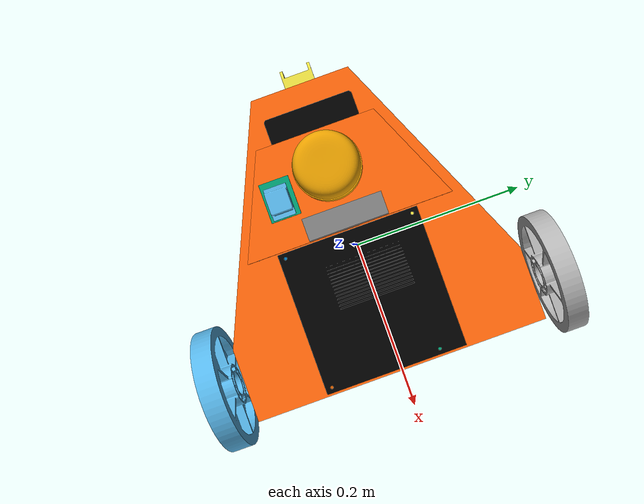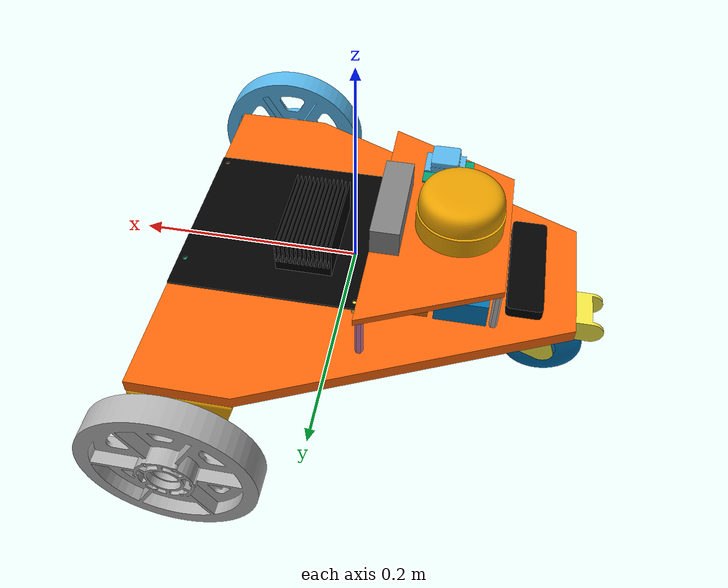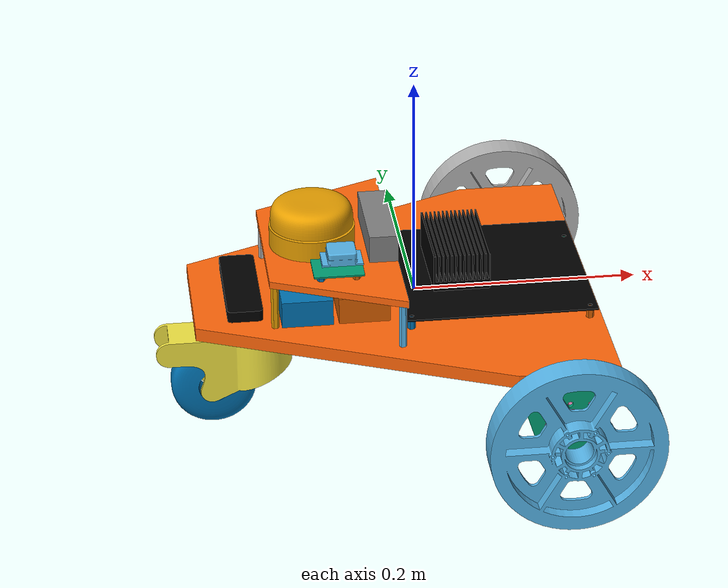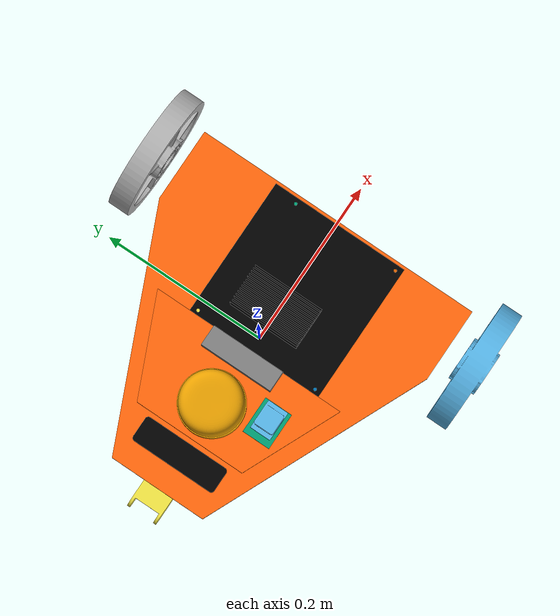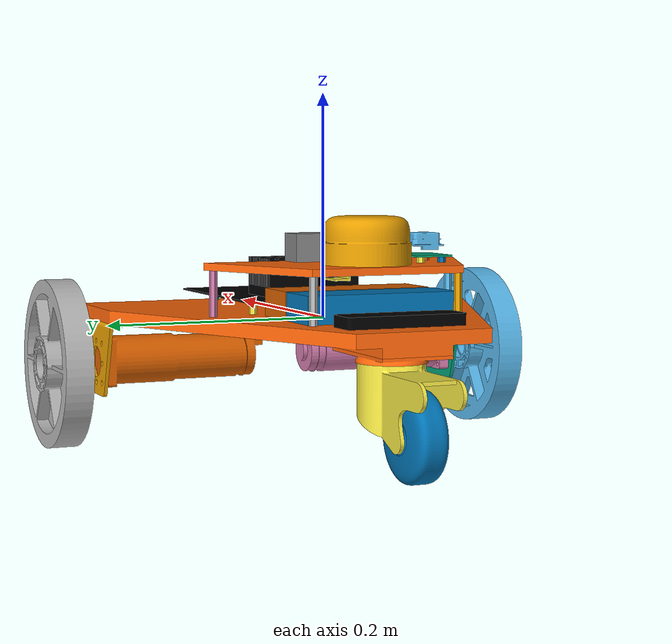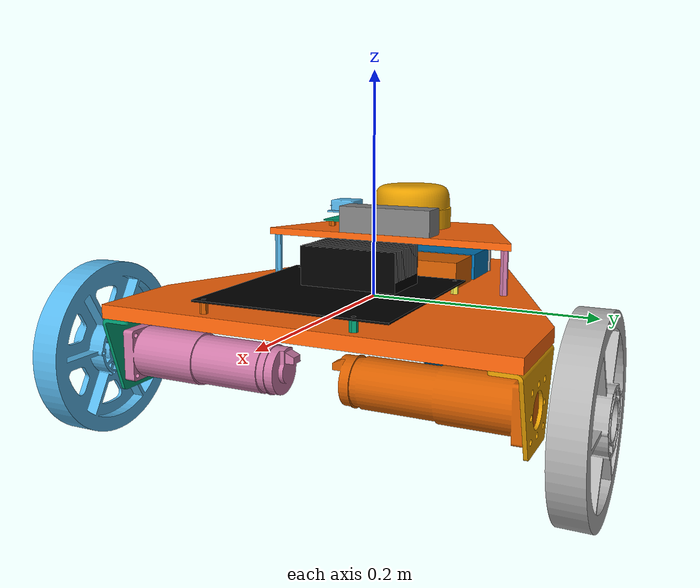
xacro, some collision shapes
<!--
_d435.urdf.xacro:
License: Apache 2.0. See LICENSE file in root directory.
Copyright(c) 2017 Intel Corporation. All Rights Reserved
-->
<?xml version="1.0"?>
<!-- Revolute-Revolute Manipulator -->
<robot name="little_rover" xmlns:xacro="http://ros.org/wiki/xacro">
<xacro:include filename="$(find little_rover)/urdf/_d435.urdf.xacro" />

  <!-- Define colors to use -->
  <material name="black">
    <color rgba="0.0 0.0 0.0 1.0"/>
  </material>
  <material name="orange">
    <color rgba="1.0 0.4 0.04 1.0"/>
  </material>

  <!-- Define ROS controller plugin -->
  <gazebo>
    <plugin name="gazebo_ros_control" filename="libgazebo_ros_control.so">
      <robotNamespace>/</robotNamespace>
    </plugin>
  </gazebo>

  <link name="base_link"/>

  <joint name="dummy_joint" type="fixed">
    <parent link="base_link"/>
    <child link="dummy"/>
    <origin xyz="0 0 0"/>
  </joint>

  <!-- Link used to define the rover body -->
  <link name="dummy">
    <visual>
        <origin xyz="0 0 0" rpy="0 0 0"/>
        <geometry>
          <mesh filename="package://little_rover/meshes/baseframe.dae"/>
        </geometry>
        <material name="orange"/>
    </visual>
    <collision>
        <origin xyz="0 0 0" rpy="0 0 0"/>
        <geometry>
          <mesh filename="package://little_rover/meshes/baseframe.dae"/>
        </geometry>
    </collision>
    <inertial>
      <origin xyz="0 0 0" rpy="0 0 0"/>
      <mass value="0.40825332"/>
      <inertia ixx="0.00290479"  ixy="0"  ixz="0.0003146" iyy="0.00401074" iyz="0" izz="0.00690116" />
    </inertial>
  </link>
  <!-- Color Properties for rover -->
  <gazebo reference="dummy">
    <material>Gazebo/Orange</material>
  </gazebo>

<!-- define the castor baseplate -->
  <joint name="castor_baseplate_joint" type="fixed">
    <parent link="dummy"/>
    <child link="castor_baseplate"/>
    <origin xyz="-0.13952 0 -0.01925" rpy="0 0 0"/>
  </joint>

  <!-- Link used to define the rover body -->
  <link name="castor_baseplate">
    <visual>
        <origin xyz="0 0 0" rpy="0 0 0"/>
        <geometry>
          <mesh filename="package://little_rover/meshes/castor_baseplate.dae"/>
        </geometry>
        <material name="orange"/>
    </visual>
    <collision>
        <origin xyz="0 0 0" rpy="0 0 0"/>
        <geometry>
          <mesh filename="package://little_rover/meshes/castor_baseplate.dae"/>
        </geometry>
    </collision>
    <inertial>
      <origin xyz="0 0 0" rpy="0 0 0"/>
      <mass value="0.23041547"/>
      <inertia ixx="0.00006154"  ixy="0"  ixz="0" iyy="0.00010617" iyz="0" izz="0.00016438" />
    </inertial>
  </link>
  <!-- Color Properties for rover -->
  <gazebo reference="castor_baseplate">
    <material>Gazebo/Orange</material>
  </gazebo>

<!-- define the castor SWIVEL -->
  <joint name="castor_swivel_joint" type="continuous">
    <parent link="dummy"/>
    <child link="castor_swivel"/>
    <origin xyz=" -0.13952 0 -0.048014399" rpy="0 0 0"/>
    <axis xyz="0 0 1"/>
  </joint>

  <!-- Link used to define the castor SWIVEL -->
  <link name="castor_swivel">
    <visual>
        <origin xyz="-0.02552697 0 0" rpy="0 0 0"/>
        <geometry>
          <mesh filename="package://little_rover/meshes/castor_swivel.dae"/>
        </geometry>
    </visual>
    <collision>
        <origin xyz="-0.02552697 0 0" rpy="0 0 0"/>
        <geometry>
          <mesh filename="package://little_rover/meshes/castor_swivel.dae"/>
        </geometry>
    </collision>
    <inertial>
        <origin xyz="-0.02552697 0 0" rpy="0 0 0"/>
      <mass value="0.32608979"/>
      <inertia ixx="0.00019346"  ixy="0"  ixz="-0.00000695" iyy="0.00041506" iyz="0" izz="0.00044385" />
    </inertial>
  </link>

<!-- define the castor WHEEL -->
  <joint name="castor_wheel_joint" type="continuous">
    <parent link="castor_swivel"/>
    <child link="castor_wheel"/>
    <origin xyz=" -0.04467807 0 -0.033561514" rpy="0 0 0"/>
    <axis xyz="0 1 0"/>
  </joint>

  <!-- Link used to define the castor WHEEL -->
  <link name="castor_wheel">
    <visual>
        <origin xyz="0 0 0" rpy="0 0 0"/>
        <geometry>
          <mesh filename="package://little_rover/meshes/castor_wheel.dae"/>
        </geometry>
    </visual>
    <collision>
        <origin xyz="0 0 0" rpy="0 0 0"/>
        <geometry>
          <mesh filename="package://little_rover/meshes/castor_wheel.dae"/>
        </geometry>
    </collision>
    <inertial>
      <origin xyz="0 0 0" rpy="0 0 0"/>
      <mass value="0.12613212"/>
      <inertia ixx="0.00005694"  ixy="0"  ixz="0" iyy="0.00009868" iyz="0" izz="0.00005694" />
    </inertial>
  </link>

<!-- define the LEFT MOTOR -->
  <joint name="left_motor_joint" type="fixed">
    <parent link="dummy"/>
    <child link="left_motor"/>
    <origin xyz=" 0.11103 0.105081768 -0.04347" rpy="0 0 3.14"/>
  </joint>

  <!-- Link used to define the castor WHEEL -->
  <link name="left_motor">
    <visual>
        <origin xyz="0 0 0" rpy="0 0 0"/>
        <geometry>
          <mesh filename="package://little_rover/meshes/motor.dae"/>
        </geometry>
    </visual>
    <collision>
        <origin xyz="0 0 0" rpy="0 0 0"/>
        <geometry>
          <mesh filename="package://little_rover/meshes/motor.dae"/>
        </geometry>
    </collision>
    <inertial>
      <origin xyz="0 0 0" rpy="0 0 0"/>
      <mass value="1.78356005"/>
      <inertia ixx="0.00347687"  ixy="0"  ixz="0" iyy="0.00041889" iyz="0.0000107" izz="0.00347521" />
    </inertial>
  </link>

<!-- define the RIGHT MOTOR -->
  <joint name="right_motor_joint" type="fixed">
    <parent link="dummy"/>
    <child link="right_motor"/>
    <origin xyz=" 0.11103 -0.105081768 -0.04347" rpy="0 0 0"/>
  </joint>

  <!-- Link used to define the RIGHT MOTOR -->
  <link name="right_motor">
    <visual>
        <origin xyz="0 0 0" rpy="0 0 0"/>
        <geometry>
          <mesh filename="package://little_rover/meshes/motor.dae"/>
        </geometry>
    </visual>
    <collision>
        <origin xyz="0 0 0" rpy="0 0 0"/>
        <geometry>
          <mesh filename="package://little_rover/meshes/motor.dae"/>
        </geometry>
    </collision>
    <inertial>
      <origin xyz="0 0 0" rpy="0 0 0"/>
      <mass value="1.78356005"/>
      <inertia ixx="0.00347687"  ixy="0"  ixz="0" iyy="0.00041889" iyz="0.0000107" izz="0.00347521" />
    </inertial>
  </link>

<!-- define the LEFT WHEEL -->
  <joint name="left_wheel_joint" type="continuous">
    <parent link="base_link"/>
    <child link="left_wheel"/>
    <origin xyz="0.111031338 0.213989 -0.043472939" rpy="0 0 0"/>
    <axis xyz="0 1 0"/>
    <limit effort="99" velocity="99"/>
  </joint>

  <!-- Link used to define the LEFT WHEEL -->
  <link name="left_wheel">
    <visual>
        <origin xyz="0 0 0" rpy="0 0 0"/>
        <geometry>
          <mesh filename="package://little_rover/meshes/wheels.dae"/>
        </geometry>
    </visual>
    <collision>
        <origin xyz="0 0 0" rpy="0 0 0"/>
        <geometry>
          <mesh filename="package://little_rover/meshes/wheels.dae"/>
        </geometry>
    </collision>
    <inertial>
      <origin xyz="0 0 0" rpy="0 0 0"/>
      <mass value="0.22670304"/>
      <inertia ixx="0.00043593"  ixy="0"  ixz="0" iyy="0.00084810" iyz="0.0000107" izz="0.00043593" />
    </inertial>
  </link>

<!-- define the LEFT MOTOR MOUNT -->
  <joint name="left_motor_mount_to_frame_joint" type="fixed">
    <parent link="dummy"/>
    <child link="left_motor_mount"/>
    <origin xyz=" 0.111031338 0.172344332 -0.025877769" rpy = "0 0 3.14"/>
  </joint>

  <!-- Link used to define the LEFT MOTOR MOUNT -->
  <link name="left_motor_mount">
    <visual>
        <origin xyz="0 0 0 " rpy="0 0 0"/>
        <geometry>
          <mesh filename="package://little_rover/meshes/motormount.dae"/>
        </geometry>
    </visual>
    <collision>
        <origin xyz="0 0 0" rpy="0 0 0"/>
        <geometry>
          <mesh filename="package://little_rover/meshes/motormount.dae"/>
        </geometry>
    </collision>
    <inertial>
      <origin xyz="0 0 0" rpy="0 0 0"/>
      <mass value="0.04698869"/>
      <inertia ixx="0.00002328"  ixy="0"  ixz="-0" iyy="0.00004708" iyz="0.00000376" izz="0.00002855" />
    </inertial>
  </link>

<!-- define the RIGHT WHEEL -->
  <joint name="right_wheel_joint" type="continuous">
    <parent link="base_link"/>
    <child link="right_wheel"/>
    <origin xyz="0.111031338 -0.213989 -0.043472939" rpy="0 0 0"/>
    <axis xyz="0 1 0"/>
    <limit effort="99" velocity="99"/>
  </joint>

  <!-- Link used to define the RIGHT WHEEL -->
  <link name="right_wheel">
    <visual>
        <origin xyz="0 0 0" rpy="0 0 0"/>
        <geometry>
          <mesh filename="package://little_rover/meshes/wheels.dae"/>
        </geometry>
    </visual>
    <collision>
        <origin xyz="0 0 0" rpy="0 0 0"/>
        <geometry>
          <mesh filename="package://little_rover/meshes/wheels.dae"/>
        </geometry>
    </collision>
    <inertial>
      <origin xyz="0 0 0" rpy="0 0 0"/>
      <mass value="0.22670304"/>
      <inertia ixx="0.00043593"  ixy="0"  ixz="0" iyy="0.00084810" iyz="0.0000107" izz="0.00043593" />
    </inertial>
  </link>

<!-- define the RIGHT MOTOR MOUNT -->
  <joint name="right_motor_mount_to_frame_joint" type="fixed">
    <parent link="dummy"/>
    <child link="right_motor_mount"/>
    <origin xyz=" 0.111031338 -0.172344332 -0.025877769"/>
  </joint>

  <!-- Link used to define the RIGHT MOTOR MOUNT -->
  <link name="right_motor_mount">
    <visual>
        <origin xyz="0 0 0 " rpy="0 0 0"/>
        <geometry>
          <mesh filename="package://little_rover/meshes/motormount.dae"/>
        </geometry>
    </visual>
    <collision>
        <origin xyz="0 0 0" rpy="0 0 0"/>
        <geometry>
          <mesh filename="package://little_rover/meshes/motormount.dae"/>
        </geometry>
    </collision>
    <inertial>
      <origin xyz="0 0 0" rpy="0 0 0"/>
      <mass value="0.04698869"/>
      <inertia ixx="0.00002328"  ixy="0"  ixz="-0" iyy="0.00004708" iyz="0.00000376" izz="0.00002855" />
    </inertial>
  </link>

<!-- define the USB HUB -->
  <joint name="usb_hub_to_frame_joint" type="fixed">
    <parent link="dummy"/>
    <child link="usb_hub"/>
    <origin xyz=" -0.1551186625 0 0.011551733"/>
  </joint>

  <!-- Link used to define the USB HUB -->
  <link name="usb_hub">
    <visual>
        <origin xyz="0 0 0" rpy="0 0 0"/>
        <geometry>
          <mesh filename="package://little_rover/meshes/usb_hub.dae"/>
        </geometry>
        <material name="black"/>
    </visual>
    <collision>
        <origin xyz="0 0 0" rpy="0 0 0"/>
        <geometry>
          <mesh filename="package://little_rover/meshes/usb_hub.dae"/>
        </geometry>
    </collision>
    <inertial>
      <origin xyz="0 0 0" rpy="0 0 0"/>
      <mass value="0.01814184"/>
      <inertia ixx="0.00001732"  ixy="0"  ixz="0" iyy="0.00000161" iyz="0" izz="0.00001863" />
    </inertial>
  </link>
  <!-- Color Properties for rover -->
  <gazebo reference="usb_hub">
    <material>Gazebo/Black</material>
  </gazebo>

<!-- define the VENOM_LIPO_BATTERY -->
  <joint name="lipo_battery_to_frame_joint" type="fixed">
    <parent link="dummy"/>
    <child link="lipo_battery"/>
    <origin xyz="-0.10202198687 0 0.01855173322"/>
  </joint>

  <!-- Link used to define the LIPO_BATTERY -->
  <link name="lipo_battery">
    <visual>
        <origin xyz="0 0 0" rpy="0 0 0"/>
        <geometry>
          <mesh filename="package://little_rover/meshes/venom.dae"/>
        </geometry>
    </visual>
    <collision>
        <origin xyz="0 0 0" rpy="0 0 0"/>
        <geometry>
          <mesh filename="package://little_rover/meshes/venom.dae"/>
        </geometry>
    </collision>
    <inertial>
      <origin xyz="0 0 0" rpy="0 0 0"/>
      <mass value="0.291"/>
      <inertia ixx="0.000640"  ixy="0"  ixz="0" iyy="0.000086" iyz="0" izz="0.000693" />
    </inertial>
  </link>

<!-- define the FLOUREON_LIPO_BATTERY -->
  <joint name="floureon_lipo_battery_to_frame_joint" type="fixed">
    <parent link="dummy"/>
    <child link="floureon_lipo_battery"/>
    <origin xyz="-0.05202198687 0 0.01855173322"/>
  </joint>

  <!-- Link used to define the LIPO_BATTERY -->
  <link name="floureon_lipo_battery">
    <visual>
        <origin xyz="0 0 0" rpy="0 0 0"/>
        <geometry>
          <mesh filename="package://little_rover/meshes/floureon_lipo.dae"/>
        </geometry>
    </visual>
    <collision>
        <origin xyz="0 0 0" rpy="0 0 0"/>
        <geometry>
          <mesh filename="package://little_rover/meshes/floureon_lipo.dae"/>
        </geometry>
    </collision>
    <inertial>
      <origin xyz="0 0 0" rpy="0 0 0"/>
      <mass value="0.248"/>
      <inertia ixx="0.000640"  ixy="0"  ixz="0" iyy="0.000086" iyz="0" izz="0.000693" />
    </inertial>
  </link>

<!-- define the TEGRA -->
  <joint name="tegra_to_frame_joint" type="fixed">
    <parent link="dummy"/>
    <child link="tegra"/>
    <origin xyz=" 0.047725555 0 0.02601842767"/>
  </joint>

  <!-- Link used to define the TEGRA -->
  <link name="tegra">
    <visual>
        <origin xyz="0 0 0" rpy="0 0 0"/>
        <geometry>
          <mesh filename="package://little_rover/meshes/tegra.dae"/>
        </geometry>
        <material name="black"/>
    </visual>
    <collision>
        <origin xyz="0 0 0" rpy="0 0 0"/>
        <geometry>
          <mesh filename="package://little_rover/meshes/usbtegra_hub.dae"/>
        </geometry>
    </collision>
    <inertial>
      <origin xyz="0 0 0" rpy="0 0 0"/>
      <mass value="0.51699145"/>
      <inertia ixx="0.0073190"  ixy="-0.00002872"  ixz="-0.00004840" iyy="0.00068670" iyz="0.00001379" izz="0.0013062" />
    </inertial>
  </link>
  <!-- Color Properties for rover -->
  <gazebo reference="tegra">
    <material>Gazebo/Black</material>
  </gazebo>

<!-- define the MOUNTED PLATFORM -->
  <joint name="mounted_platform_to_frame_joint" type="fixed">
    <parent link="dummy"/>
    <child link="mounted_platform"/>
    <origin xyz=" -0.072019494 0 0.049726733"/>
  </joint>

  <!-- Link used to define the MOUNTED PLATFORM -->
  <link name="mounted_platform">
    <visual>
        <origin xyz="0 0 0" rpy="0 0 0"/>
        <geometry>
          <mesh filename="package://little_rover/meshes/mountedframe.dae"/>
        </geometry>
        <material name="orange"/>
    </visual>
    <collision>
        <origin xyz="0 0 0" rpy="0 0 0"/>
        <geometry>
          <mesh filename="package://little_rover/meshes/mountedframe.dae"/>
        </geometry>
    </collision>
    <inertial>
      <origin xyz="0 0 0" rpy="0 0 0"/>
      <mass value="0.00013797"/>
      <inertia ixx="0.0014988"  ixy="0"  ixz="0" iyy="0.00005060" iyz="0" izz="0.00020016" />
    </inertial>
  </link>
  <!-- Color Properties for rover -->
  <gazebo reference="mounted_platform">
    <material>Gazebo/Orange</material>
  </gazebo>

<!-- define the LIDAR -->
  <joint name="lidar_to_frame_joint" type="fixed">
    <parent link="base_link"/>
    <child link="lidar"/>
    <origin xyz=" -0.090928513 0 0.072214832"/>
  </joint>

  <!-- Link used to define the LIDAR -->
  <link name="lidar">
    <visual>
        <origin xyz="0 0 0 " rpy="0 0 0"/>
        <geometry>
          <mesh filename="package://little_rover/meshes/lidar.dae"/>
        </geometry>
    </visual>
    <collision>
        <origin xyz="0 0 0" rpy="0 0 0"/>
        <geometry>
          <mesh filename="package://little_rover/meshes/lidar.dae"/>
        </geometry>
    </collision>
    <inertial>
      <origin xyz="0 0 0" rpy="0 0 0"/>
      <mass value="0.018999609"/>
      <inertia ixx="0.00008853"  ixy="0"  ixz="0" iyy="0.0008853" iyz="0" izz="0.00012710" />
    </inertial>
  </link>

  <!-- RpLidar A2 using GPU -->
  <gazebo reference="lidar">
    <sensor type="ray" name="head_rplidar_sensor">
      <pose>0 0 0 0 0 0</pose>
      <visualize>false</visualize>
      <update_rate>30</update_rate>
      <ray>
        <scan>
          <horizontal>
            <samples>750</samples>
            <resolution>1</resolution>
            <min_angle>-3.14159</min_angle>
            <max_angle>3.14159</max_angle>
          </horizontal>
        </scan>
        <range>
          <min>0.5</min>
          <max>8.0</max>
          <resolution>0.01</resolution>
        </range>
        <noise>
          <type>gaussian</type>
          <mean>0.0</mean>
          <stddev>0.01</stddev>
        </noise>
      </ray>
      <plugin name="gazebo_ros_head_rplidar_controller" filename="libgazebo_ros_laser.so">
        <topicName>scan</topicName>
        <frameName>lidar</frameName>
      </plugin>
    </sensor>
  </gazebo>

<!-- define the GPS -->
  <joint name="gps_to_frame_joint" type="fixed">
    <parent link="dummy"/>
    <child link="gps_link"/>
    <origin xyz=" -0.074751030 -0.06172963534 0.067406362"/>
  </joint>

  <!-- Link used to define the GPS -->
  <link name="gps_link">
    <visual>
        <origin xyz="0 0 0" rpy="0 0 0"/>
        <geometry>
          <mesh filename="package://little_rover/meshes/gps.dae"/>
        </geometry>
    </visual>
    <collision>
        <origin xyz="0 0 0" rpy="0 0 0"/>
        <geometry>
          <mesh filename="package://little_rover/meshes/gps.dae"/>
        </geometry>
    </collision>
    <inertial>
      <origin xyz="0 0 0" rpy="0 0 0"/>
      <mass value="0.01698754"/>
      <inertia ixx="0.00000106"  ixy="0"  ixz="0.00000004" iyy="0.00000131" iyz="0" izz="0.00000197" />
    </inertial>
  </link>

<!-- define the GPS PROTOBOARD-->
  <joint name="gps_protoboard_to_frame_joint" type="fixed">
    <parent link="dummy"/>
    <child link="gps_protoboard"/>
    <origin xyz=" -0.074751030 -0.06172963534 0.05866373322"/>
  </joint>

  <!-- Link used to define the GPS PROTOBOARD -->
  <link name="gps_protoboard">
    <visual>
        <origin xyz="0 0 0" rpy="0 0 0"/>
        <geometry>
          <mesh filename="package://little_rover/meshes/gps_protoboard.dae"/>
        </geometry>
    </visual>
    <collision>
        <origin xyz="0 0 0" rpy="0 0 0"/>
        <geometry>
          <mesh filename="package://little_rover/meshes/gps_protoboard.dae"/>
        </geometry>
    </collision>
    <inertial>
      <origin xyz="0 0 0" rpy="0 0 0"/>
      <mass value="0.00096284"/>
      <inertia ixx="0.00000009"  ixy="0"  ixz="0" iyy="0.00000016" iyz="0" izz="0.00000025" />
    </inertial>
  </link>

<!-- define the IMU -->
  <joint name="imu_to_frame_joint" type="fixed">
    <parent link="base_link"/>
    <child link="imu_link"/>
    <origin xyz=" -0.034684662 0 0.036854179"/>
  </joint>

  <!-- Link used to define the IMU -->
  <link name="imu_link">
    <visual>
        <origin xyz="0 0 0 " rpy="0 0 0"/>
        <geometry>
          <mesh filename="package://little_rover/meshes/imu.dae"/>
        </geometry>
    </visual>
    <collision>
        <origin xyz="0 0 0" rpy="0 0 0"/>
        <geometry>
          <mesh filename="package://little_rover/meshes/imu.dae"/>
        </geometry>
    </collision>
    <inertial>
      <origin xyz="0 0 0" rpy="0 0 0"/>
      <mass value="0.00070068"/>
      <inertia ixx="0.00000002"  ixy="0"  ixz="0" iyy="0.00000003" iyz="0" izz="0.00000004" />
    </inertial>
  </link>

<!-- define the IMU PROTOBOARD -->
  <joint name="imu_protoboard_to_frame_joint" type="fixed">
    <parent link="dummy"/>
    <child link="imu_protoboard"/>
    <origin xyz=" -0.034684662 0 0.040789733"/>
  </joint>

  <!-- Link used to define the IMU PROTOBOARD -->
  <link name="imu_protoboard">
    <visual>
        <origin xyz="0 0 0 " rpy="0 0 0"/>
        <geometry>
          <mesh filename="package://little_rover/meshes/imu_protoboard.dae"/>
        </geometry>
    </visual>
    <collision>
        <origin xyz="0 0 0" rpy="0 0 0"/>
        <geometry>
          <mesh filename="package://little_rover/meshes/imu_protoboard.dae"/>
        </geometry>
    </collision>
    <inertial>
      <origin xyz="0 0 0" rpy="0 0 0"/>
      <mass value="0.00046292"/>
      <inertia ixx="0.00000002"  ixy="0"  ixz="0" iyy="0.00000003" iyz="0" izz="0.00000006" />
    </inertial>
  </link>

<!-- define the MOTOR_DRIVER -->
  <joint name="motor_driver_to_frame_joint" type="fixed">
    <parent link="dummy"/>
    <child link="motor_driver"/>
    <origin xyz=" 0.027804925 0 -0.011183322"/>
  </joint>

  <!-- Link used to define the MOTORDRIVER -->
  <link name="motor_driver">
    <visual>
        <origin xyz="0 0 0 " rpy="0 0 0"/>
        <geometry>
          <mesh filename="package://little_rover/meshes/motor_driver.dae"/>
        </geometry>
    </visual>
    <collision>
        <origin xyz="0 0 0" rpy="0 0 0"/>
        <geometry>
          <mesh filename="package://little_rover/meshes/motor_driver.dae"/>
        </geometry>
    </collision>
    <inertial>
      <origin xyz="0 0 0" rpy="0 0 0"/>
      <mass value="0.07299047"/>
      <inertia ixx="0.00001789"  ixy="0.00000057"  ixz="-0.00000092" iyy="0.00000057" iyz="0.00000007" izz="0.00003962" />
    </inertial>
  </link>

<!-- define the MOUNTED_FRAME_STANDOFF_1 -->
  <joint name="mountedframe_standoff_1_to_frame_joint" type="fixed">
    <parent link="dummy"/>
    <child link="mountedframe_standoff_1"/>
    <origin xyz="-0.024198663 0.11308 0.02655173322"/>
  </joint>

  <!-- Link used to define the MOUNTED_FRAME_STANDOFF_1 -->
  <link name="mountedframe_standoff_1">
    <visual>
        <origin xyz="0 0 0 " rpy="0 0 0"/>
        <geometry>
          <mesh filename="package://little_rover/meshes/40mm_standoff.dae"/>
        </geometry>
    </visual>
    <collision>
        <origin xyz="0 0 0" rpy="0 0 0"/>
        <geometry>
          <mesh filename="package://little_rover/meshes/40mm_standoff.dae"/>
        </geometry>
    </collision>
    <inertial>
      <origin xyz="0 0 0" rpy="0 0 0"/>
      <mass value="0.00498831"/>
      <inertia ixx="0.00000068"  ixy="0"  ixz="0" iyy="0.00000068" iyz="0" izz="0.00000003" />
    </inertial>
  </link>

<!-- define the MOUNTED_FRAME_STANDOFF_2 -->
  <joint name="mountedframe_standoff_2_to_frame_joint" type="fixed">
    <parent link="dummy"/>
    <child link="mountedframe_standoff_2"/>
    <origin xyz="-0.1301986625 0.06600315463 0.02655173322"/>
  </joint>

  <!-- Link used to define the MOUNTED_FRAME_STANDOFF_2 -->
  <link name="mountedframe_standoff_2">
    <visual>
        <origin xyz="0 0 0 " rpy="0 0 0"/>
        <geometry>
          <mesh filename="package://little_rover/meshes/40mm_standoff.dae"/>
        </geometry>
    </visual>
    <collision>
        <origin xyz="0 0 0" rpy="0 0 0"/>
        <geometry>
          <mesh filename="package://little_rover/meshes/40mm_standoff.dae"/>
        </geometry>
    </collision>
    <inertial>
      <origin xyz="0 0 0" rpy="0 0 0"/>
      <mass value="0.00498831"/>
      <inertia ixx="0.00000068"  ixy="0"  ixz="0" iyy="0.00000068" iyz="0" izz="0.00000003" />
    </inertial>
  </link>

<!-- define the MOUNTED_FRAME_STANDOFF_3 -->
  <joint name="mountedframe_standoff_3_to_frame_joint" type="fixed">
    <parent link="dummy"/>
    <child link="mountedframe_standoff_3"/>
    <origin xyz="-0.1301986625 -0.06600315463 0.02655173322"/>
  </joint>

  <!-- Link used to define the MOUNTED_FRAME_STANDOFF_3 -->
  <link name="mountedframe_standoff_3">
    <visual>
        <origin xyz="0 0 0 " rpy="0 0 0"/>
        <geometry>
          <mesh filename="package://little_rover/meshes/40mm_standoff.dae"/>
        </geometry>
    </visual>
    <collision>
        <origin xyz="0 0 0" rpy="0 0 0"/>
        <geometry>
          <mesh filename="package://little_rover/meshes/40mm_standoff.dae"/>
        </geometry>
    </collision>
    <inertial>
      <origin xyz="0 0 0" rpy="0 0 0"/>
      <mass value="0.00498831"/>
      <inertia ixx="0.00000068"  ixy="0"  ixz="0" iyy="0.00000068" iyz="0" izz="0.00000003" />
    </inertial>
  </link>

<!-- define the MOUNTED_FRAME_STANDOFF_4 -->
  <joint name="mountedframe_standoff_4_to_frame_joint" type="fixed">
    <parent link="dummy"/>
    <child link="mountedframe_standoff_4"/>
    <origin xyz="-0.024198663 -0.11308 0.02655173322"/>
  </joint>

  <!-- Link used to define the MOUNTED_FRAME_STANDOFF_4 -->
  <link name="mountedframe_standoff_4">
    <visual>
        <origin xyz="0 0 0 " rpy="0 0 0"/>
        <geometry>
          <mesh filename="package://little_rover/meshes/40mm_standoff.dae"/>
        </geometry>
    </visual>
    <collision>
        <origin xyz="0 0 0" rpy="0 0 0"/>
        <geometry>
          <mesh filename="package://little_rover/meshes/40mm_standoff.dae"/>
        </geometry>
    </collision>
    <inertial>
      <origin xyz="0 0 0" rpy="0 0 0"/>
      <mass value="0.00498831"/>
      <inertia ixx="0.00000068"  ixy="0"  ixz="0" iyy="0.00000068" iyz="0" izz="0.00000003" />
    </inertial>
  </link>

<!-- define the GPS_STANDOFF_1 -->
  <joint name="gps_standoff_1_to_frame_joint" type="fixed">
    <parent link="dummy"/>
    <child link="gps_standoff_1"/>
    <origin xyz="-0.05925102998 -0.05172963534 0.05540173322"/>
  </joint>

  <!-- Link used to define the GPS_STANDOFF_1 -->
  <link name="gps_standoff_1">
    <visual>
        <origin xyz="0 0 0 " rpy="0 0 0"/>
        <geometry>
          <mesh filename="package://little_rover/meshes/5mm_standoff.dae"/>
        </geometry>
    </visual>
    <collision>
        <origin xyz="0 0 0" rpy="0 0 0"/>
        <geometry>
          <mesh filename="package://little_rover/meshes/5mm_standoff.dae"/>
        </geometry>
    </collision>
    <inertial>
      <origin xyz="0 0 0" rpy="0 0 0"/>
      <mass value="0.00062354"/>
      <inertia ixx="0"  ixy="00"  ixz="0" iyy="0" iyz="0" izz="0" />
    </inertial>
  </link>

<!-- define the GPS_STANDOFF_2 -->
  <joint name="gps_standoff_2_to_frame_joint" type="fixed">
    <parent link="dummy"/>
    <child link="gps_standoff_2"/>
    <origin xyz="-0.09025102998 -0.05172963534 0.05540173322"/>
  </joint>

  <!-- Link used to define the GPS_STANDOFF_2 -->
  <link name="gps_standoff_2">
    <visual>
        <origin xyz="0 0 0 " rpy="0 0 0"/>
        <geometry>
          <mesh filename="package://little_rover/meshes/5mm_standoff.dae"/>
        </geometry>
    </visual>
    <collision>
        <origin xyz="0 0 0" rpy="0 0 0"/>
        <geometry>
          <mesh filename="package://little_rover/meshes/5mm_standoff.dae"/>
        </geometry>
    </collision>
    <inertial>
      <origin xyz="0 0 0" rpy="0 0 0"/>
      <mass value="0.00062354"/>
      <inertia ixx="0"  ixy="00"  ixz="0" iyy="0" iyz="0" izz="0" />
    </inertial>
  </link>

<!-- define the GPS_STANDOFF_3 -->
  <joint name="gps_standoff_3_to_frame_joint" type="fixed">
    <parent link="dummy"/>
    <child link="gps_standoff_3"/>
    <origin xyz="-0.09025102998 -0.07172963534 0.05540173322"/>
  </joint>

  <!-- Link used to define the GPS_STANDOFF_3 -->
  <link name="gps_standoff_3">
    <visual>
        <origin xyz="0 0 0 " rpy="0 0 0"/>
        <geometry>
          <mesh filename="package://little_rover/meshes/5mm_standoff.dae"/>
        </geometry>
    </visual>
    <collision>
        <origin xyz="0 0 0" rpy="0 0 0"/>
        <geometry>
          <mesh filename="package://little_rover/meshes/5mm_standoff.dae"/>
        </geometry>
    </collision>
    <inertial>
      <origin xyz="0 0 0" rpy="0 0 0"/>
      <mass value="0.00062354"/>
      <inertia ixx="0"  ixy="00"  ixz="0" iyy="0" iyz="0" izz="0" />
    </inertial>
  </link>

<!-- define the GPS_STANDOFF_4 -->
  <joint name="gps_standoff_4_to_frame_joint" type="fixed">
    <parent link="dummy"/>
    <child link="gps_standoff_4"/>
    <origin xyz="-0.05925102998 -0.07172963534 0.05540173322"/>
  </joint>

  <!-- Link used to define the GPS_STANDOFF_4 -->
  <link name="gps_standoff_4">
    <visual>
        <origin xyz="0 0 0 " rpy="0 0 0"/>
        <geometry>
          <mesh filename="package://little_rover/meshes/5mm_standoff.dae"/>
        </geometry>
    </visual>
    <collision>
        <origin xyz="0 0 0" rpy="0 0 0"/>
        <geometry>
          <mesh filename="package://little_rover/meshes/5mm_standoff.dae"/>
        </geometry>
    </collision>
    <inertial>
      <origin xyz="0 0 0" rpy="0 0 0"/>
      <mass value="0.00062354"/>
      <inertia ixx="0"  ixy="00"  ixz="0" iyy="0" iyz="0" izz="0" />
    </inertial>
  </link>

<!-- define the IMU_STANDOFF_1 -->
  <joint name="imu_standoff_1_to_frame_joint" type="fixed">
    <parent link="dummy"/>
    <child link="imu_standoff_1"/>
    <origin xyz="-0.024198663 0.00757 0.04405173322"/>
  </joint>

  <!-- Link used to define the IMU_STANDOFF_1 -->
  <link name="imu_standoff_1">
    <visual>
        <origin xyz="0 0 0 " rpy="0 0 0"/>
        <geometry>
          <mesh filename="package://little_rover/meshes/5mm_standoff.dae"/>
        </geometry>
    </visual>
    <collision>
        <origin xyz="0 0 0" rpy="0 0 0"/>
        <geometry>
          <mesh filename="package://little_rover/meshes/5mm_standoff.dae"/>
        </geometry>
    </collision>
    <inertial>
      <origin xyz="0 0 0" rpy="0 0 0"/>
      <mass value="0.00062354"/>
      <inertia ixx="0"  ixy="00"  ixz="0" iyy="0" iyz="0" izz="0" />
    </inertial>
  </link>

<!-- define the IMU_STANDOFF_2 -->
  <joint name="imu_standoff_2_to_frame_joint" type="fixed">
    <parent link="dummy"/>
    <child link="imu_standoff_2"/>
    <origin xyz="-0.0451706625 0.00757 0.04405173322"/>
  </joint>

  <!-- Link used to define the IMU_STANDOFF_2 -->
  <link name="imu_standoff_2">
    <visual>
        <origin xyz="0 0 0 " rpy="0 0 0"/>
        <geometry>
          <mesh filename="package://little_rover/meshes/5mm_standoff.dae"/>
        </geometry>
    </visual>
    <collision>
        <origin xyz="0 0 0" rpy="0 0 0"/>
        <geometry>
          <mesh filename="package://little_rover/meshes/5mm_standoff.dae"/>
        </geometry>
    </collision>
    <inertial>
      <origin xyz="0 0 0" rpy="0 0 0"/>
      <mass value="0.00062354"/>
      <inertia ixx="0"  ixy="00"  ixz="0" iyy="0" iyz="0" izz="0" />
    </inertial>
  </link>

<!-- define the IMU_STANDOFF_3 -->
  <joint name="imu_standoff_3_to_frame_joint" type="fixed">
    <parent link="dummy"/>
    <child link="imu_standoff_3"/>
    <origin xyz="-0.0451706625 -0.00757 0.04405173322"/>
  </joint>

  <!-- Link used to define the IMU_STANDOFF_3 -->
  <link name="imu_standoff_3">
    <visual>
        <origin xyz="0 0 0 " rpy="0 0 0"/>
        <geometry>
          <mesh filename="package://little_rover/meshes/5mm_standoff.dae"/>
        </geometry>
    </visual>
    <collision>
        <origin xyz="0 0 0" rpy="0 0 0"/>
        <geometry>
          <mesh filename="package://little_rover/meshes/5mm_standoff.dae"/>
        </geometry>
    </collision>
    <inertial>
      <origin xyz="0 0 0" rpy="0 0 0"/>
      <mass value="0.00062354"/>
      <inertia ixx="0"  ixy="00"  ixz="0" iyy="0" iyz="0" izz="0" />
    </inertial>
  </link>

<!-- define the IMU_STANDOFF_4 -->
  <joint name="imu_standoff_4_to_frame_joint" type="fixed">
    <parent link="dummy"/>
    <child link="imu_standoff_4"/>
    <origin xyz="-0.024198663 -0.00757 0.04405173322"/>
  </joint>

  <!-- Link used to define the IMU_STANDOFF_4 -->
  <link name="imu_standoff_4">
    <visual>
        <origin xyz="0 0 0 " rpy="0 0 0"/>
        <geometry>
          <mesh filename="package://little_rover/meshes/5mm_standoff.dae"/>
        </geometry>
    </visual>
    <collision>
        <origin xyz="0 0 0" rpy="0 0 0"/>
        <geometry>
          <mesh filename="package://little_rover/meshes/5mm_standoff.dae"/>
        </geometry>
    </collision>
    <inertial>
      <origin xyz="0 0 0" rpy="0 0 0"/>
      <mass value="0.00062354"/>
      <inertia ixx="0"  ixy="00"  ixz="0" iyy="0" iyz="0" izz="0" />
    </inertial>
  </link>

<!-- define the TEGRA_STANDOFF_1 -->
  <joint name="tegra_standoff_1_to_frame_joint" type="fixed">
    <parent link="dummy"/>
    <child link="tegra_standoff_1"/>
    <origin xyz="0.1446313375 0.04936129150 0.011551733"/>
  </joint>

  <!-- Link used to define the TEGRA_STANDOFF_1 -->
  <link name="tegra_standoff_1">
    <visual>
        <origin xyz="0 0 0 " rpy="0 0 0"/>
        <geometry>
          <mesh filename="package://little_rover/meshes/10mm_standoff.dae"/>
        </geometry>
    </visual>
    <collision>
        <origin xyz="0 0 0" rpy="0 0 0"/>
        <geometry>
          <mesh filename="package://little_rover/meshes/10mm_standoff.dae"/>
        </geometry>
    </collision>
    <inertial>
      <origin xyz="0 0 0" rpy="0 0 0"/>
      <mass value="0.00124708"/>
      <inertia ixx="0.00000001"  ixy="00"  ixz="0" iyy="0.00000001" iyz="0" izz="0" />
    </inertial>
  </link>

<!-- define the TEGRA_STANDOFF_2 -->
  <joint name="tegra_standoff_2_to_frame_joint" type="fixed">
    <parent link="dummy"/>
    <child link="tegra_standoff_2"/>
    <origin xyz="-0.012848663 0.07219480481 0.011551733"/>
  </joint>

  <!-- Link used to define the TEGRA_STANDOFF_2 -->
  <link name="tegra_standoff_2">
    <visual>
        <origin xyz="0 0 0 " rpy="0 0 0"/>
        <geometry>
          <mesh filename="package://little_rover/meshes/10mm_standoff.dae"/>
        </geometry>
    </visual>
    <collision>
        <origin xyz="0 0 0" rpy="0 0 0"/>
        <geometry>
          <mesh filename="package://little_rover/meshes/10mm_standoff.dae"/>
        </geometry>
    </collision>
    <inertial>
      <origin xyz="0 0 0" rpy="0 0 0"/>
      <mass value="0.00124708"/>
      <inertia ixx="0.00000001"  ixy="00"  ixz="0" iyy="0.00000001" iyz="0" izz="0" />
    </inertial>
  </link>

<!-- define the TEGRA_STANDOFF_3 -->
  <joint name="tegra_standoff_3_to_frame_joint" type="fixed">
    <parent link="dummy"/>
    <child link="tegra_standoff_3"/>
    <origin xyz="-0.012848663 -0.082728652 0.011551733"/>
  </joint>

  <!-- Link used to define the TEGRA_STANDOFF_3 -->
  <link name="tegra_standoff_3">
    <visual>
        <origin xyz="0 0 0 " rpy="0 0 0"/>
        <geometry>
          <mesh filename="package://little_rover/meshes/10mm_standoff.dae"/>
        </geometry>
    </visual>
    <collision>
        <origin xyz="0 0 0" rpy="0 0 0"/>
        <geometry>
          <mesh filename="package://little_rover/meshes/10mm_standoff.dae"/>
        </geometry>
    </collision>
    <inertial>
      <origin xyz="0 0 0" rpy="0 0 0"/>
      <mass value="0.00124708"/>
      <inertia ixx="0.00000001"  ixy="00"  ixz="0" iyy="0.00000001" iyz="0" izz="0" />
    </inertial>
  </link>

<!-- define the TEGRA_STANDOFF_4 -->
  <joint name="tegra_standoff_4_to_frame_joint" type="fixed">
    <parent link="dummy"/>
    <child link="tegra_standoff_4"/>
    <origin xyz="0.1446313375 -0.08272865275 0.011551733"/>
  </joint>

  <!-- Link used to define the TEGRA_STANDOFF_4 -->
  <link name="tegra_standoff_4">
    <visual>
        <origin xyz="0 0 0 " rpy="0 0 0"/>
        <geometry>
          <mesh filename="package://little_rover/meshes/10mm_standoff.dae"/>
        </geometry>
    </visual>
    <collision>
        <origin xyz="0 0 0" rpy="0 0 0"/>
        <geometry>
          <mesh filename="package://little_rover/meshes/10mm_standoff.dae"/>
        </geometry>
    </collision>
    <inertial>
      <origin xyz="0 0 0" rpy="0 0 0"/>
      <mass value="0.00124708"/>
      <inertia ixx="0.00000001"  ixy="00"  ixz="0" iyy="0.00000001" iyz="0" izz="0" />
    </inertial>
  </link>

<gazebo reference="imu_link">
  <gravity>true</gravity>
  <sensor name="imu_sensor" type="imu">
    <always_on>true</always_on>
    <update_rate>50</update_rate>
    <visualize>true</visualize>
    <topic>__default_topic__</topic>
    <plugin filename="libgazebo_ros_imu_sensor.so" name="imu_plugin">
      <topicName>imu</topicName>
      <bodyName>imu_link</bodyName>
      <updateRateHZ>50.0</updateRateHZ>
      <gaussianNoise>0.0</gaussianNoise>
      <xyzOffset>0 0 0</xyzOffset>
      <rpyOffset>0 0 0</rpyOffset>
      <frameName>imu_link</frameName>
      <initialOrientationAsReference>false</initialOrientationAsReference>
    </plugin>
    <pose>0 0 0 0 0 0</pose>
  </sensor>
</gazebo>

<gazebo>
    <plugin name="gazebo_ros_gps" filename="libhector_gazebo_ros_gps.so">
        <updateRate>4.0</updateRate>
        <bodyName>gps_link</bodyName>
        <frameId>gps_link</frameId>
        <topicName>/gps/fix</topicName>
        <velocityTopicName>/gps/fix_velocity</velocityTopicName>
        <referenceLatitude>-30.06022459407145675</referenceLatitude>
        <referenceLongitude>-51.173913575780311191</referenceLongitude>
        <referenceHeading>90</referenceHeading>
        <referenceAltitude>10</referenceAltitude>
        <offset>0 0 0</offset>
        <drift>0.001 0.001 0.001</drift>
        <gaussianNoise>0.05 0.05 0.05</gaussianNoise>
        <velocityDrift>0.001 0.001 0.001</velocityDrift>
        <velocityGaussianNoise>0.5 0.5 0.5</velocityGaussianNoise>
    </plugin>
</gazebo>

<xacro:sensor_d435 name="camera" topics_ns="camera" parent="base_link" publish_pointcloud="true">
  <origin xyz="-0.032428513 0 0.05246948" rpy="0 0 0" />
</xacro:sensor_d435>

<!-- Left Wheel Transmission Element -->
<transmission name="simple_trans_1">
  <type>transmission_interface/SimpleTransmission</type>
  <joint name="left_wheel_joint">
    <hardwareInterface>hardware_interface/VelocityJointInterface</hardwareInterface>
  </joint>
  <actuator name="left_wheel_actuator">
    <mechanicalReduction>1</mechanicalReduction>
    <hardwareInterface>hardware_interface/VelocityJointInterface</hardwareInterface>
  </actuator>
</transmission>

<!-- Right Wheel Transmission Element -->
<transmission name="simple_trans_2">
  <type>transmission_interface/SimpleTransmission</type>
  <joint name="right_wheel_joint">
    <hardwareInterface>hardware_interface/VelocityJointInterface</hardwareInterface>
  </joint>
  <actuator name="right_wheel_actuator">
    <mechanicalReduction>1</mechanicalReduction>
    <hardwareInterface>hardware_interface/VelocityJointInterface</hardwareInterface>
  </actuator>
</transmission>

</robot>

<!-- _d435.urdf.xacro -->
<robot name="sensor_d435" xmlns:xacro="http://ros.org/wiki/xacro">
  <!--File includes-->
  <xacro:include filename="$(find little_rover)/urdf/_d435.gazebo.xacro"/>

  <xacro:macro name="sensor_d435" params="name:=camera topics_ns:=camera parent *origin publish_pointcloud:=true">
    <xacro:property name="M_PI" value="3.1415926535897931" />

    <!-- The following values are approximate, and the camera node
     publishing TF values with actual calibrated camera extrinsic values -->
    <xacro:property name="d435_cam_depth_to_left_ir_offset" value="0.0"/>
    <xacro:property name="d435_cam_depth_to_right_ir_offset" value="-0.050"/>
    <xacro:property name="d435_cam_depth_to_color_offset" value="0.015"/>

    <!-- The following values model the aluminum peripherial case for the
    D435 camera, with the camera joint represented by the actual
    peripherial camera tripod mount -->
    <xacro:property name="d435_cam_width" value="0.090"/>
    <xacro:property name="d435_cam_height" value="0.025"/>
    <xacro:property name="d435_cam_depth" value="0.02505"/>
    <xacro:property name="d435_cam_mount_from_center_offset" value="0.0149"/>

    <!-- The following offset is relative the the physical D435 camera peripherial
    camera tripod mount -->
    <xacro:property name="d435_cam_depth_px" value="${d435_cam_mount_from_center_offset}"/>
    <xacro:property name="d435_cam_depth_py" value="0.0175"/>
    <xacro:property name="d435_cam_depth_pz" value="${d435_cam_height/2}"/>

    <material name="${name}_aluminum">
    <color rgba="0.5 0.5 0.5 1"/>
    </material>

    <!-- camera body, with origin at bottom screw mount -->
    <joint name="${name}_joint" type="fixed">
      <xacro:insert_block name="origin" />
      <parent link="${parent}"/>
      <child link="${name}_bottom_screw_frame" />
    </joint>
    <link name="${name}_bottom_screw_frame"/>

    <joint name="${name}_link_joint" type="fixed">
      <origin xyz="0 ${d435_cam_depth_py} ${d435_cam_depth_pz}" rpy="0 0 0"/>
      <parent link="${name}_bottom_screw_frame"/>
      <child link="${name}_link" />
    </joint>

    <link name="${name}_link">
      <visual>
      <origin xyz="${d435_cam_mount_from_center_offset} ${-d435_cam_depth_py} 0" rpy="${M_PI/2} 0 ${M_PI/2}"/>
        <geometry>
          <mesh filename="package://realsense2_description/meshes/d435.dae" />
        </geometry>
        <material name="${name}_aluminum"/>
      </visual>
      <collision>
        <origin xyz="0 ${-d435_cam_depth_py} 0" rpy="0 0 0"/>
        <geometry>
        <box size="${d435_cam_depth} ${d435_cam_width} ${d435_cam_height}"/>
        </geometry>
      </collision>
      <inertial>
        <!-- The following are not reliable values, and should not be used for modeling -->
        <mass value="0.564" />
        <origin xyz="0 0 0" />
        <inertia ixx="0.003881243" ixy="0.0" ixz="0.0" iyy="0.000498940" iyz="0.0" izz="0.003879257" />
      </inertial>
    </link>

    <!-- camera depth joints and links -->
    <joint name="${name}_depth_joint" type="fixed">
      <origin xyz="0 0 0" rpy="0 0 0"/>
      <parent link="${name}_link"/>
      <child link="${name}_depth_frame" />
    </joint>
    <link name="${name}_depth_frame"/>

    <joint name="${name}_depth_optical_joint" type="fixed">
      <origin xyz="0 0 0" rpy="${-M_PI/2} 0 ${-M_PI/2}" />
      <parent link="${name}_depth_frame" />
      <child link="${name}_depth_optical_frame" />
    </joint>
    <link name="${name}_depth_optical_frame"/>

    <!-- camera left IR joints and links -->
    <joint name="${name}_left_ir_joint" type="fixed">
      <origin xyz="0 ${d435_cam_depth_to_left_ir_offset} 0" rpy="0 0 0" />
      <parent link="${name}_depth_frame" />
      <child link="${name}_left_ir_frame" />
    </joint>
    <link name="${name}_left_ir_frame"/>

    <joint name="${name}_left_ir_optical_joint" type="fixed">
      <origin xyz="0 0 0" rpy="${-M_PI/2} 0 ${-M_PI/2}" />
      <parent link="${name}_left_ir_frame" />
      <child link="${name}_left_ir_optical_frame" />
    </joint>
    <link name="${name}_left_ir_optical_frame"/>

    <!-- camera right IR joints and links -->
    <joint name="${name}_right_ir_joint" type="fixed">
      <origin xyz="0 ${d435_cam_depth_to_right_ir_offset} 0" rpy="0 0 0" />
      <parent link="${name}_depth_frame" />
      <child link="${name}_right_ir_frame" />
    </joint>
    <link name="${name}_right_ir_frame"/>

    <joint name="${name}_right_ir_optical_joint" type="fixed">
      <origin xyz="0 0 0" rpy="${-M_PI/2} 0 ${-M_PI/2}" />
      <parent link="${name}_right_ir_frame" />
      <child link="${name}_right_ir_optical_frame" />
    </joint>
    <link name="${name}_right_ir_optical_frame"/>

    <!-- camera color joints and links -->
    <joint name="${name}_color_joint" type="fixed">
      <origin xyz="0 ${d435_cam_depth_to_color_offset} 0" rpy="0 0 0" />
      <parent link="${name}_depth_frame" />
      <child link="${name}_color_frame" />
    </joint>
    <link name="${name}_color_frame"/>

    <joint name="${name}_color_optical_joint" type="fixed">
      <origin xyz="0 0 0" rpy="${-M_PI/2} 0 ${-M_PI/2}" />
      <parent link="${name}_color_frame" />
      <child link="${name}_color_optical_frame" />
    </joint>
    <link name="${name}_color_optical_frame"/>

    <!-- Realsense Gazebo Plugin -->
    <xacro:gazebo_d435 camera_name="${name}" reference_link="${name}_link" topics_ns="${topics_ns}" depth_optical_frame="${name}_depth_optical_frame" color_optical_frame="${name}_color_optical_frame" infrared1_optical_frame="${name}_left_ir_optical_frame" infrared2_optical_frame="${name}_right_ir_optical_frame" publish_pointcloud="${publish_pointcloud}"/>

  </xacro:macro>
</robot>
